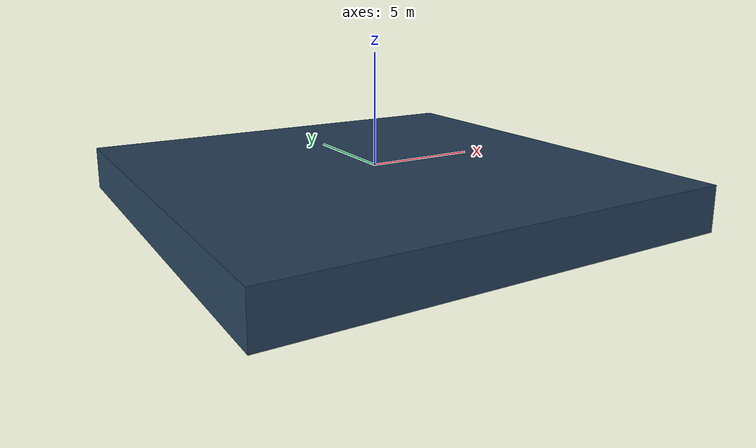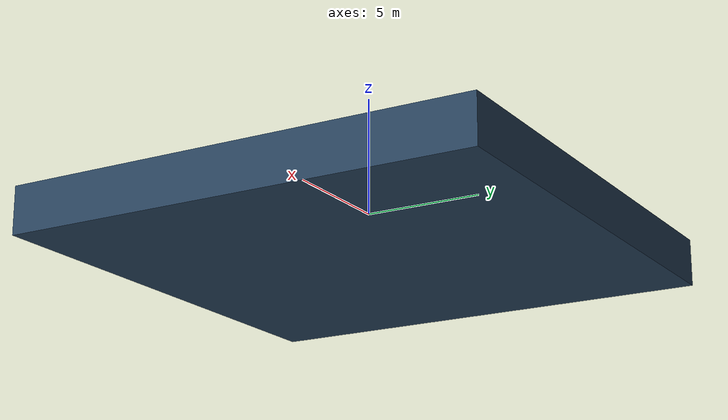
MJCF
<mujoco>
  <compiler angle="degree" coordinate="local" inertiafromgeom="true" meshdir="./meshes" />
  <option solver="CG" iterations="6" ls_iterations="6" timestep="0.002" gravity="0 0 -981" density="0.00128" viscosity="0.000185" cone="elliptic"/>
  <visual>
    <headlight diffuse=".5 .5 .5" specular="1 1 1"/>
    <global offwidth="2048" offheight="1536"/>
    <quality shadowsize="8192"/>
  </visual>

  <asset>
    <texture name="grid" type="2d" builtin="checker" width="512" height="512" rgb1=".1 .2 .3" rgb2=".2 .3 .4"/>
    <material name="grid" texture="grid" texrepeat="30 30" texuniform="true" reflectance=".2"/>
  </asset>

  <worldbody>
    <geom contype="0" conaffinity="1" name="floor" pos="0 0 -1" size="10 10 1" type="box" material="grid"/>
  </worldbody>
</mujoco>
